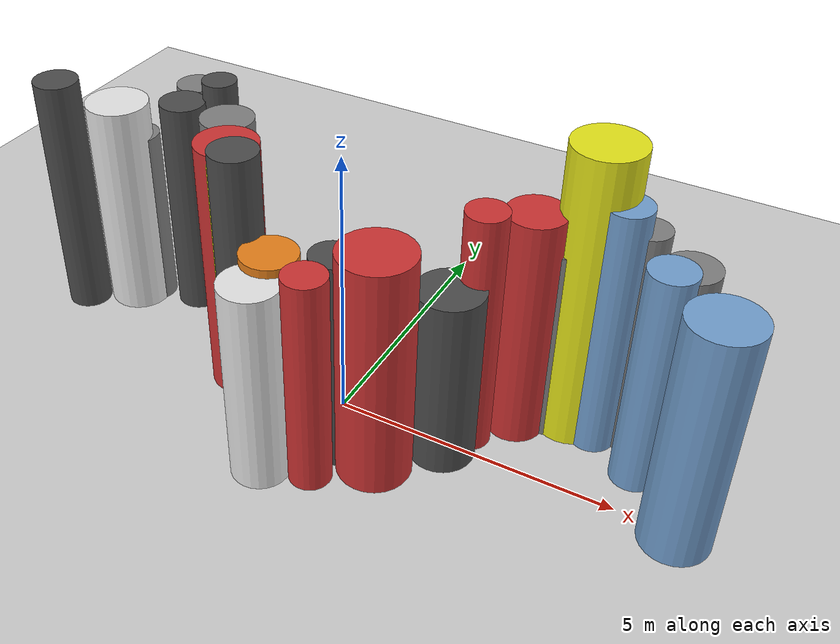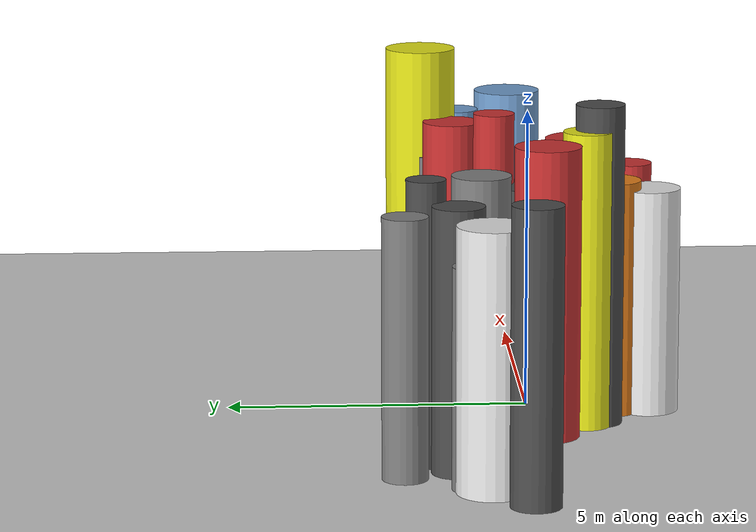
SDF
<?xml version='1.0'?>
<sdf version='1.6'>
  <world name='routeA_rl_v1__dense_recovery__rl_test__s_turn_multi_obstacle__000024'>
    <!-- Sun light -->
    <light name='sun' type='directional'>
      <cast_shadows>1</cast_shadows>
      <pose>0 0 10 0 0 0</pose>
      <diffuse>0.8 0.8 0.8 1</diffuse>
      <specular>0.2 0.2 0.2 1</specular>
      <attenuation>
        <range>1000</range>
        <constant>0.9</constant>
        <linear>0.01</linear>
        <quadratic>0.001</quadratic>
      </attenuation>
      <direction>-0.5 0.1 -0.9</direction>
    </light>

    <!-- Ground plane -->
    <model name='ground_plane'>
      <static>1</static>
      <link name='link'>
        <collision name='collision'>
          <geometry>
            <plane>
              <normal>0 0 1</normal>
              <size>100 100</size>
            </plane>
          </geometry>
          <surface>
            <contact>
              <collide_bitmask>65535</collide_bitmask>
              <ode/>
            </contact>
            <friction>
              <ode>
                <mu>100</mu>
                <mu2>50</mu2>
              </ode>
              <torsional><ode/></torsional>
            </friction>
            <bounce/>
          </surface>
          <max_contacts>10</max_contacts>
        </collision>
        <visual name='visual'>
          <cast_shadows>0</cast_shadows>
          <geometry>
            <plane>
              <normal>0 0 1</normal>
              <size>100 100</size>
            </plane>
          </geometry>
          <material>
            <script>
              <uri>file://media/materials/scripts/gazebo.material</uri>
              <n>Gazebo/Grey</n>
            </script>
          </material>
        </visual>
      </link>
    </model>

    <!-- Environment -->
    <magnetic_field>6e-06 2.3e-05 -4.2e-05</magnetic_field>
    <atmosphere type='adiabatic'/>
    <physics name='default_physics' default='0' type='ode'>
      <gravity>0 0 -9.8</gravity>
      <max_step_size>0.004</max_step_size>
      <real_time_factor>1</real_time_factor>
      <real_time_update_rate>250</real_time_update_rate>
    </physics>
    <scene>
      <ambient>0.4 0.4 0.4 1</ambient>
      <background>0.7 0.7 0.7 1</background>
      <shadows>1</shadows>
    </scene>
    <wind/>
    <spherical_coordinates>
      <surface_model>EARTH_WGS84</surface_model>
      <latitude_deg>0</latitude_deg>
      <longitude_deg>0</longitude_deg>
      <elevation>0</elevation>
      <heading_deg>0</heading_deg>
    </spherical_coordinates>

    <!-- ============ OBSTACLES (28) ============ -->
    <model name='s_turn_obs_0'>
      <static>1</static>
      <link name='link'>
        <visual name='visual'>
          <geometry>
            <cylinder>
              <radius>0.4055</radius>
              <length>4.6828</length>
            </cylinder>
          </geometry>
          <material>
            <script>
              <n>Gazebo/DarkGrey</n>
              <uri>file://media/materials/scripts/gazebo.material</uri>
            </script>
            <ambient>0.3 0.3 0.3 1</ambient>
          </material>
        </visual>
        <collision name='collision'>
          <geometry>
            <cylinder>
              <radius>0.4055</radius>
              <length>4.6828</length>
            </cylinder>
          </geometry>
          <max_contacts>10</max_contacts>
          <surface>
            <contact><ode/></contact>
            <bounce/>
            <friction>
              <ode><mu>1</mu><mu2>1</mu2></ode>
              <torsional><ode/></torsional>
            </friction>
          </surface>
        </collision>
      </link>
      <pose>-6.0000 0.3077 2.3414 0 0 0.0000</pose>
    </model>

    <model name='s_turn_obs_1'>
      <static>1</static>
      <link name='link'>
        <visual name='visual'>
          <geometry>
            <cylinder>
              <radius>0.5742</radius>
              <length>4.2001</length>
            </cylinder>
          </geometry>
          <material>
            <script>
              <n>Gazebo/White</n>
              <uri>file://media/materials/scripts/gazebo.material</uri>
            </script>
            <ambient>0.9 0.9 0.9 1</ambient>
          </material>
        </visual>
        <collision name='collision'>
          <geometry>
            <cylinder>
              <radius>0.5742</radius>
              <length>4.2001</length>
            </cylinder>
          </geometry>
          <max_contacts>10</max_contacts>
          <surface>
            <contact><ode/></contact>
            <bounce/>
            <friction>
              <ode><mu>1</mu><mu2>1</mu2></ode>
              <torsional><ode/></torsional>
            </friction>
          </surface>
        </collision>
      </link>
      <pose>-5.2000 0.9138 2.1000 0 0 0.0000</pose>
    </model>

    <model name='s_turn_obs_2'>
      <static>1</static>
      <link name='link'>
        <visual name='visual'>
          <geometry>
            <cylinder>
              <radius>0.3680</radius>
              <length>4.1854</length>
            </cylinder>
          </geometry>
          <material>
            <script>
              <n>Gazebo/Grey</n>
              <uri>file://media/materials/scripts/gazebo.material</uri>
            </script>
            <ambient>0.5 0.5 0.5 1</ambient>
          </material>
        </visual>
        <collision name='collision'>
          <geometry>
            <cylinder>
              <radius>0.3680</radius>
              <length>4.1854</length>
            </cylinder>
          </geometry>
          <max_contacts>10</max_contacts>
          <surface>
            <contact><ode/></contact>
            <bounce/>
            <friction>
              <ode><mu>1</mu><mu2>1</mu2></ode>
              <torsional><ode/></torsional>
            </friction>
          </surface>
        </collision>
      </link>
      <pose>-4.4000 2.2265 2.0927 0 0 0.0000</pose>
    </model>

    <model name='s_turn_obs_3'>
      <static>1</static>
      <link name='link'>
        <visual name='visual'>
          <geometry>
            <cylinder>
              <radius>0.3184</radius>
              <length>4.6031</length>
            </cylinder>
          </geometry>
          <material>
            <script>
              <n>Gazebo/DarkGrey</n>
              <uri>file://media/materials/scripts/gazebo.material</uri>
            </script>
            <ambient>0.3 0.3 0.3 1</ambient>
          </material>
        </visual>
        <collision name='collision'>
          <geometry>
            <cylinder>
              <radius>0.3184</radius>
              <length>4.6031</length>
            </cylinder>
          </geometry>
          <max_contacts>10</max_contacts>
          <surface>
            <contact><ode/></contact>
            <bounce/>
            <friction>
              <ode><mu>1</mu><mu2>1</mu2></ode>
              <torsional><ode/></torsional>
            </friction>
          </surface>
        </collision>
      </link>
      <pose>-3.6000 1.8654 2.3015 0 0 0.0000</pose>
    </model>

    <model name='s_turn_obs_4'>
      <static>1</static>
      <link name='link'>
        <visual name='visual'>
          <geometry>
            <cylinder>
              <radius>0.4798</radius>
              <length>4.4944</length>
            </cylinder>
          </geometry>
          <material>
            <script>
              <n>Gazebo/Grey</n>
              <uri>file://media/materials/scripts/gazebo.material</uri>
            </script>
            <ambient>0.5 0.5 0.5 1</ambient>
          </material>
        </visual>
        <collision name='collision'>
          <geometry>
            <cylinder>
              <radius>0.4798</radius>
              <length>4.4944</length>
            </cylinder>
          </geometry>
          <max_contacts>10</max_contacts>
          <surface>
            <contact><ode/></contact>
            <bounce/>
            <friction>
              <ode><mu>1</mu><mu2>1</mu2></ode>
              <torsional><ode/></torsional>
            </friction>
          </surface>
        </collision>
      </link>
      <pose>-2.8000 0.9473 2.2472 0 0 0.0000</pose>
    </model>

    <model name='s_turn_obs_5'>
      <static>1</static>
      <link name='link'>
        <visual name='visual'>
          <geometry>
            <cylinder>
              <radius>0.5446</radius>
              <length>4.7929</length>
            </cylinder>
          </geometry>
          <material>
            <script>
              <n>Gazebo/Red</n>
              <uri>file://media/materials/scripts/gazebo.material</uri>
            </script>
            <ambient>0.8 0.2 0.2 1</ambient>
          </material>
        </visual>
        <collision name='collision'>
          <geometry>
            <cylinder>
              <radius>0.5446</radius>
              <length>4.7929</length>
            </cylinder>
          </geometry>
          <max_contacts>10</max_contacts>
          <surface>
            <contact><ode/></contact>
            <bounce/>
            <friction>
              <ode><mu>1</mu><mu2>1</mu2></ode>
              <torsional><ode/></torsional>
            </friction>
          </surface>
        </collision>
      </link>
      <pose>-2.0000 -0.1821 2.3965 0 0 0.0000</pose>
    </model>

    <model name='s_turn_obs_6'>
      <static>1</static>
      <link name='link'>
        <visual name='visual'>
          <geometry>
            <cylinder>
              <radius>0.4034</radius>
              <length>5.3223</length>
            </cylinder>
          </geometry>
          <material>
            <script>
              <n>Gazebo/DarkGrey</n>
              <uri>file://media/materials/scripts/gazebo.material</uri>
            </script>
            <ambient>0.3 0.3 0.3 1</ambient>
          </material>
        </visual>
        <collision name='collision'>
          <geometry>
            <cylinder>
              <radius>0.4034</radius>
              <length>5.3223</length>
            </cylinder>
          </geometry>
          <max_contacts>10</max_contacts>
          <surface>
            <contact><ode/></contact>
            <bounce/>
            <friction>
              <ode><mu>1</mu><mu2>1</mu2></ode>
              <torsional><ode/></torsional>
            </friction>
          </surface>
        </collision>
      </link>
      <pose>-1.2000 -1.0943 2.6612 0 0 0.0000</pose>
    </model>

    <model name='s_turn_obs_7'>
      <static>1</static>
      <link name='link'>
        <visual name='visual'>
          <geometry>
            <cylinder>
              <radius>0.5094</radius>
              <length>3.7750</length>
            </cylinder>
          </geometry>
          <material>
            <script>
              <n>Gazebo/White</n>
              <uri>file://media/materials/scripts/gazebo.material</uri>
            </script>
            <ambient>0.9 0.9 0.9 1</ambient>
          </material>
        </visual>
        <collision name='collision'>
          <geometry>
            <cylinder>
              <radius>0.5094</radius>
              <length>3.7750</length>
            </cylinder>
          </geometry>
          <max_contacts>10</max_contacts>
          <surface>
            <contact><ode/></contact>
            <bounce/>
            <friction>
              <ode><mu>1</mu><mu2>1</mu2></ode>
              <torsional><ode/></torsional>
            </friction>
          </surface>
        </collision>
      </link>
      <pose>-0.4000 -2.0066 1.8875 0 0 0.0000</pose>
    </model>

    <model name='s_turn_obs_8'>
      <static>1</static>
      <link name='link'>
        <visual name='visual'>
          <geometry>
            <cylinder>
              <radius>0.3683</radius>
              <length>4.0422</length>
            </cylinder>
          </geometry>
          <material>
            <script>
              <n>Gazebo/Red</n>
              <uri>file://media/materials/scripts/gazebo.material</uri>
            </script>
            <ambient>0.8 0.2 0.2 1</ambient>
          </material>
        </visual>
        <collision name='collision'>
          <geometry>
            <cylinder>
              <radius>0.3683</radius>
              <length>4.0422</length>
            </cylinder>
          </geometry>
          <max_contacts>10</max_contacts>
          <surface>
            <contact><ode/></contact>
            <bounce/>
            <friction>
              <ode><mu>1</mu><mu2>1</mu2></ode>
              <torsional><ode/></torsional>
            </friction>
          </surface>
        </collision>
      </link>
      <pose>0.4000 -1.7470 2.0211 0 0 0.0000</pose>
    </model>

    <model name='s_turn_obs_9'>
      <static>1</static>
      <link name='link'>
        <visual name='visual'>
          <geometry>
            <cylinder>
              <radius>0.6406</radius>
              <length>4.3018</length>
            </cylinder>
          </geometry>
          <material>
            <script>
              <n>Gazebo/Red</n>
              <uri>file://media/materials/scripts/gazebo.material</uri>
            </script>
            <ambient>0.8 0.2 0.2 1</ambient>
          </material>
        </visual>
        <collision name='collision'>
          <geometry>
            <cylinder>
              <radius>0.6406</radius>
              <length>4.3018</length>
            </cylinder>
          </geometry>
          <max_contacts>10</max_contacts>
          <surface>
            <contact><ode/></contact>
            <bounce/>
            <friction>
              <ode><mu>1</mu><mu2>1</mu2></ode>
              <torsional><ode/></torsional>
            </friction>
          </surface>
        </collision>
      </link>
      <pose>1.2000 -1.0361 2.1509 0 0 0.0000</pose>
    </model>

    <model name='s_turn_obs_10'>
      <static>1</static>
      <link name='link'>
        <visual name='visual'>
          <geometry>
            <cylinder>
              <radius>0.5704</radius>
              <length>3.3410</length>
            </cylinder>
          </geometry>
          <material>
            <script>
              <n>Gazebo/DarkGrey</n>
              <uri>file://media/materials/scripts/gazebo.material</uri>
            </script>
            <ambient>0.3 0.3 0.3 1</ambient>
          </material>
        </visual>
        <collision name='collision'>
          <geometry>
            <cylinder>
              <radius>0.5704</radius>
              <length>3.3410</length>
            </cylinder>
          </geometry>
          <max_contacts>10</max_contacts>
          <surface>
            <contact><ode/></contact>
            <bounce/>
            <friction>
              <ode><mu>1</mu><mu2>1</mu2></ode>
              <torsional><ode/></torsional>
            </friction>
          </surface>
        </collision>
      </link>
      <pose>2.0000 -0.1325 1.6705 0 0 0.0000</pose>
    </model>

    <model name='s_turn_obs_11'>
      <static>1</static>
      <link name='link'>
        <visual name='visual'>
          <geometry>
            <cylinder>
              <radius>0.5012</radius>
              <length>4.3136</length>
            </cylinder>
          </geometry>
          <material>
            <script>
              <n>Gazebo/Red</n>
              <uri>file://media/materials/scripts/gazebo.material</uri>
            </script>
            <ambient>0.8 0.2 0.2 1</ambient>
          </material>
        </visual>
        <collision name='collision'>
          <geometry>
            <cylinder>
              <radius>0.5012</radius>
              <length>4.3136</length>
            </cylinder>
          </geometry>
          <max_contacts>10</max_contacts>
          <surface>
            <contact><ode/></contact>
            <bounce/>
            <friction>
              <ode><mu>1</mu><mu2>1</mu2></ode>
              <torsional><ode/></torsional>
            </friction>
          </surface>
        </collision>
      </link>
      <pose>2.8000 1.0923 2.1568 0 0 0.0000</pose>
    </model>

    <model name='s_turn_obs_12'>
      <static>1</static>
      <link name='link'>
        <visual name='visual'>
          <geometry>
            <cylinder>
              <radius>0.6025</radius>
              <length>5.4761</length>
            </cylinder>
          </geometry>
          <material>
            <script>
              <n>Gazebo/Yellow</n>
              <uri>file://media/materials/scripts/gazebo.material</uri>
            </script>
            <ambient>0.9 0.9 0.1 1</ambient>
          </material>
        </visual>
        <collision name='collision'>
          <geometry>
            <cylinder>
              <radius>0.6025</radius>
              <length>5.4761</length>
            </cylinder>
          </geometry>
          <max_contacts>10</max_contacts>
          <surface>
            <contact><ode/></contact>
            <bounce/>
            <friction>
              <ode><mu>1</mu><mu2>1</mu2></ode>
              <torsional><ode/></torsional>
            </friction>
          </surface>
        </collision>
      </link>
      <pose>3.6000 1.5984 2.7380 0 0 0.0000</pose>
    </model>

    <model name='s_turn_obs_13'>
      <static>1</static>
      <link name='link'>
        <visual name='visual'>
          <geometry>
            <cylinder>
              <radius>0.3421</radius>
              <length>4.2036</length>
            </cylinder>
          </geometry>
          <material>
            <script>
              <n>Gazebo/Grey</n>
              <uri>file://media/materials/scripts/gazebo.material</uri>
            </script>
            <ambient>0.5 0.5 0.5 1</ambient>
          </material>
        </visual>
        <collision name='collision'>
          <geometry>
            <cylinder>
              <radius>0.3421</radius>
              <length>4.2036</length>
            </cylinder>
          </geometry>
          <max_contacts>10</max_contacts>
          <surface>
            <contact><ode/></contact>
            <bounce/>
            <friction>
              <ode><mu>1</mu><mu2>1</mu2></ode>
              <torsional><ode/></torsional>
            </friction>
          </surface>
        </collision>
      </link>
      <pose>4.4000 1.6649 2.1018 0 0 0.0000</pose>
    </model>

    <model name='s_turn_obs_14'>
      <static>1</static>
      <link name='link'>
        <visual name='visual'>
          <geometry>
            <cylinder>
              <radius>0.4412</radius>
              <length>4.0290</length>
            </cylinder>
          </geometry>
          <material>
            <script>
              <n>Gazebo/Grey</n>
              <uri>file://media/materials/scripts/gazebo.material</uri>
            </script>
            <ambient>0.5 0.5 0.5 1</ambient>
          </material>
        </visual>
        <collision name='collision'>
          <geometry>
            <cylinder>
              <radius>0.4412</radius>
              <length>4.0290</length>
            </cylinder>
          </geometry>
          <max_contacts>10</max_contacts>
          <surface>
            <contact><ode/></contact>
            <bounce/>
            <friction>
              <ode><mu>1</mu><mu2>1</mu2></ode>
              <torsional><ode/></torsional>
            </friction>
          </surface>
        </collision>
      </link>
      <pose>5.2000 1.2477 2.0145 0 0 0.0000</pose>
    </model>

    <model name='s_turn_obs_15'>
      <static>1</static>
      <link name='link'>
        <visual name='visual'>
          <geometry>
            <cylinder>
              <radius>0.5888</radius>
              <length>4.2959</length>
            </cylinder>
          </geometry>
          <material>
            <script>
              <n>Gazebo/Blue</n>
              <uri>file://media/materials/scripts/gazebo.material</uri>
            </script>
            <ambient>0.447 0.624 0.812 1</ambient>
          </material>
        </visual>
        <collision name='collision'>
          <geometry>
            <cylinder>
              <radius>0.5888</radius>
              <length>4.2959</length>
            </cylinder>
          </geometry>
          <max_contacts>10</max_contacts>
          <surface>
            <contact><ode/></contact>
            <bounce/>
            <friction>
              <ode><mu>1</mu><mu2>1</mu2></ode>
              <torsional><ode/></torsional>
            </friction>
          </surface>
        </collision>
      </link>
      <pose>6.0000 -0.0893 2.1479 0 0 0.0000</pose>
    </model>

    <model name='s_turn_obs2_0'>
      <static>1</static>
      <link name='link'>
        <visual name='visual'>
          <geometry>
            <cylinder>
              <radius>0.4021</radius>
              <length>3.5259</length>
            </cylinder>
          </geometry>
          <material>
            <script>
              <n>Gazebo/Grey</n>
              <uri>file://media/materials/scripts/gazebo.material</uri>
            </script>
            <ambient>0.5 0.5 0.5 1</ambient>
          </material>
        </visual>
        <collision name='collision'>
          <geometry>
            <cylinder>
              <radius>0.4021</radius>
              <length>3.5259</length>
            </cylinder>
          </geometry>
          <max_contacts>10</max_contacts>
          <surface>
            <contact><ode/></contact>
            <bounce/>
            <friction>
              <ode><mu>1</mu><mu2>1</mu2></ode>
              <torsional><ode/></torsional>
            </friction>
          </surface>
        </collision>
      </link>
      <pose>-5.0000 1.1354 1.7629 0 0 0.0000</pose>
    </model>

    <model name='s_turn_obs2_1'>
      <static>1</static>
      <link name='link'>
        <visual name='visual'>
          <geometry>
            <cylinder>
              <radius>0.4214</radius>
              <length>4.2738</length>
            </cylinder>
          </geometry>
          <material>
            <script>
              <n>Gazebo/DarkGrey</n>
              <uri>file://media/materials/scripts/gazebo.material</uri>
            </script>
            <ambient>0.3 0.3 0.3 1</ambient>
          </material>
        </visual>
        <collision name='collision'>
          <geometry>
            <cylinder>
              <radius>0.4214</radius>
              <length>4.2738</length>
            </cylinder>
          </geometry>
          <max_contacts>10</max_contacts>
          <surface>
            <contact><ode/></contact>
            <bounce/>
            <friction>
              <ode><mu>1</mu><mu2>1</mu2></ode>
              <torsional><ode/></torsional>
            </friction>
          </surface>
        </collision>
      </link>
      <pose>-4.0909 1.3831 2.1369 0 0 0.0000</pose>
    </model>

    <model name='s_turn_obs2_2'>
      <static>1</static>
      <link name='link'>
        <visual name='visual'>
          <geometry>
            <cylinder>
              <radius>0.2148</radius>
              <length>3.4799</length>
            </cylinder>
          </geometry>
          <material>
            <script>
              <n>Gazebo/DarkGrey</n>
              <uri>file://media/materials/scripts/gazebo.material</uri>
            </script>
            <ambient>0.3 0.3 0.3 1</ambient>
          </material>
        </visual>
        <collision name='collision'>
          <geometry>
            <cylinder>
              <radius>0.2148</radius>
              <length>3.4799</length>
            </cylinder>
          </geometry>
          <max_contacts>10</max_contacts>
          <surface>
            <contact><ode/></contact>
            <bounce/>
            <friction>
              <ode><mu>1</mu><mu2>1</mu2></ode>
              <torsional><ode/></torsional>
            </friction>
          </surface>
        </collision>
      </link>
      <pose>-3.1818 0.9058 1.7399 0 0 0.0000</pose>
    </model>

    <model name='s_turn_obs2_3'>
      <static>1</static>
      <link name='link'>
        <visual name='visual'>
          <geometry>
            <cylinder>
              <radius>0.2551</radius>
              <length>3.6564</length>
            </cylinder>
          </geometry>
          <material>
            <script>
              <n>Gazebo/Yellow</n>
              <uri>file://media/materials/scripts/gazebo.material</uri>
            </script>
            <ambient>0.9 0.9 0.1 1</ambient>
          </material>
        </visual>
        <collision name='collision'>
          <geometry>
            <cylinder>
              <radius>0.2551</radius>
              <length>3.6564</length>
            </cylinder>
          </geometry>
          <max_contacts>10</max_contacts>
          <surface>
            <contact><ode/></contact>
            <bounce/>
            <friction>
              <ode><mu>1</mu><mu2>1</mu2></ode>
              <torsional><ode/></torsional>
            </friction>
          </surface>
        </collision>
      </link>
      <pose>-2.2727 -0.0182 1.8282 0 0 0.0000</pose>
    </model>

    <model name='s_turn_obs2_4'>
      <static>1</static>
      <link name='link'>
        <visual name='visual'>
          <geometry>
            <cylinder>
              <radius>0.4147</radius>
              <length>4.9103</length>
            </cylinder>
          </geometry>
          <material>
            <script>
              <n>Gazebo/Yellow</n>
              <uri>file://media/materials/scripts/gazebo.material</uri>
            </script>
            <ambient>0.9 0.9 0.1 1</ambient>
          </material>
        </visual>
        <collision name='collision'>
          <geometry>
            <cylinder>
              <radius>0.4147</radius>
              <length>4.9103</length>
            </cylinder>
          </geometry>
          <max_contacts>10</max_contacts>
          <surface>
            <contact><ode/></contact>
            <bounce/>
            <friction>
              <ode><mu>1</mu><mu2>1</mu2></ode>
              <torsional><ode/></torsional>
            </friction>
          </surface>
        </collision>
      </link>
      <pose>-1.3636 -0.8899 2.4552 0 0 0.0000</pose>
    </model>

    <model name='s_turn_obs2_5'>
      <static>1</static>
      <link name='link'>
        <visual name='visual'>
          <geometry>
            <cylinder>
              <radius>0.4746</radius>
              <length>3.9224</length>
            </cylinder>
          </geometry>
          <material>
            <script>
              <n>Gazebo/Orange</n>
              <uri>file://media/materials/scripts/gazebo.material</uri>
            </script>
            <ambient>0.9 0.5 0.1 1</ambient>
          </material>
        </visual>
        <collision name='collision'>
          <geometry>
            <cylinder>
              <radius>0.4746</radius>
              <length>3.9224</length>
            </cylinder>
          </geometry>
          <max_contacts>10</max_contacts>
          <surface>
            <contact><ode/></contact>
            <bounce/>
            <friction>
              <ode><mu>1</mu><mu2>1</mu2></ode>
              <torsional><ode/></torsional>
            </friction>
          </surface>
        </collision>
      </link>
      <pose>-0.4545 -1.3803 1.9612 0 0 0.0000</pose>
    </model>

    <model name='s_turn_obs2_6'>
      <static>1</static>
      <link name='link'>
        <visual name='visual'>
          <geometry>
            <cylinder>
              <radius>0.3837</radius>
              <length>3.9929</length>
            </cylinder>
          </geometry>
          <material>
            <script>
              <n>Gazebo/DarkGrey</n>
              <uri>file://media/materials/scripts/gazebo.material</uri>
            </script>
            <ambient>0.3 0.3 0.3 1</ambient>
          </material>
        </visual>
        <collision name='collision'>
          <geometry>
            <cylinder>
              <radius>0.3837</radius>
              <length>3.9929</length>
            </cylinder>
          </geometry>
          <max_contacts>10</max_contacts>
          <surface>
            <contact><ode/></contact>
            <bounce/>
            <friction>
              <ode><mu>1</mu><mu2>1</mu2></ode>
              <torsional><ode/></torsional>
            </friction>
          </surface>
        </collision>
      </link>
      <pose>0.4545 -1.0426 1.9965 0 0 0.0000</pose>
    </model>

    <model name='s_turn_obs2_7'>
      <static>1</static>
      <link name='link'>
        <visual name='visual'>
          <geometry>
            <cylinder>
              <radius>0.2756</radius>
              <length>3.0771</length>
            </cylinder>
          </geometry>
          <material>
            <script>
              <n>Gazebo/White</n>
              <uri>file://media/materials/scripts/gazebo.material</uri>
            </script>
            <ambient>0.9 0.9 0.9 1</ambient>
          </material>
        </visual>
        <collision name='collision'>
          <geometry>
            <cylinder>
              <radius>0.2756</radius>
              <length>3.0771</length>
            </cylinder>
          </geometry>
          <max_contacts>10</max_contacts>
          <surface>
            <contact><ode/></contact>
            <bounce/>
            <friction>
              <ode><mu>1</mu><mu2>1</mu2></ode>
              <torsional><ode/></torsional>
            </friction>
          </surface>
        </collision>
      </link>
      <pose>1.3636 -0.0255 1.5385 0 0 0.0000</pose>
    </model>

    <model name='s_turn_obs2_8'>
      <static>1</static>
      <link name='link'>
        <visual name='visual'>
          <geometry>
            <cylinder>
              <radius>0.3543</radius>
              <length>4.5500</length>
            </cylinder>
          </geometry>
          <material>
            <script>
              <n>Gazebo/Red</n>
              <uri>file://media/materials/scripts/gazebo.material</uri>
            </script>
            <ambient>0.8 0.2 0.2 1</ambient>
          </material>
        </visual>
        <collision name='collision'>
          <geometry>
            <cylinder>
              <radius>0.3543</radius>
              <length>4.5500</length>
            </cylinder>
          </geometry>
          <max_contacts>10</max_contacts>
          <surface>
            <contact><ode/></contact>
            <bounce/>
            <friction>
              <ode><mu>1</mu><mu2>1</mu2></ode>
              <torsional><ode/></torsional>
            </friction>
          </surface>
        </collision>
      </link>
      <pose>2.2727 0.3981 2.2750 0 0 0.0000</pose>
    </model>

    <model name='s_turn_obs2_9'>
      <static>1</static>
      <link name='link'>
        <visual name='visual'>
          <geometry>
            <cylinder>
              <radius>0.3455</radius>
              <length>3.6467</length>
            </cylinder>
          </geometry>
          <material>
            <script>
              <n>Gazebo/Grey</n>
              <uri>file://media/materials/scripts/gazebo.material</uri>
            </script>
            <ambient>0.5 0.5 0.5 1</ambient>
          </material>
        </visual>
        <collision name='collision'>
          <geometry>
            <cylinder>
              <radius>0.3455</radius>
              <length>3.6467</length>
            </cylinder>
          </geometry>
          <max_contacts>10</max_contacts>
          <surface>
            <contact><ode/></contact>
            <bounce/>
            <friction>
              <ode><mu>1</mu><mu2>1</mu2></ode>
              <torsional><ode/></torsional>
            </friction>
          </surface>
        </collision>
      </link>
      <pose>3.1818 1.3444 1.8234 0 0 0.0000</pose>
    </model>

    <model name='s_turn_obs2_10'>
      <static>1</static>
      <link name='link'>
        <visual name='visual'>
          <geometry>
            <cylinder>
              <radius>0.3874</radius>
              <length>4.6621</length>
            </cylinder>
          </geometry>
          <material>
            <script>
              <n>Gazebo/Blue</n>
              <uri>file://media/materials/scripts/gazebo.material</uri>
            </script>
            <ambient>0.447 0.624 0.812 1</ambient>
          </material>
        </visual>
        <collision name='collision'>
          <geometry>
            <cylinder>
              <radius>0.3874</radius>
              <length>4.6621</length>
            </cylinder>
          </geometry>
          <max_contacts>10</max_contacts>
          <surface>
            <contact><ode/></contact>
            <bounce/>
            <friction>
              <ode><mu>1</mu><mu2>1</mu2></ode>
              <torsional><ode/></torsional>
            </friction>
          </surface>
        </collision>
      </link>
      <pose>4.0909 1.4166 2.3311 0 0 0.0000</pose>
    </model>

    <model name='s_turn_obs2_11'>
      <static>1</static>
      <link name='link'>
        <visual name='visual'>
          <geometry>
            <cylinder>
              <radius>0.3983</radius>
              <length>4.1336</length>
            </cylinder>
          </geometry>
          <material>
            <script>
              <n>Gazebo/Blue</n>
              <uri>file://media/materials/scripts/gazebo.material</uri>
            </script>
            <ambient>0.447 0.624 0.812 1</ambient>
          </material>
        </visual>
        <collision name='collision'>
          <geometry>
            <cylinder>
              <radius>0.3983</radius>
              <length>4.1336</length>
            </cylinder>
          </geometry>
          <max_contacts>10</max_contacts>
          <surface>
            <contact><ode/></contact>
            <bounce/>
            <friction>
              <ode><mu>1</mu><mu2>1</mu2></ode>
              <torsional><ode/></torsional>
            </friction>
          </surface>
        </collision>
      </link>
      <pose>5.0000 0.8958 2.0668 0 0 0.0000</pose>
    </model>

    <!-- GUI camera -->
    <gui fullscreen='0'>
      <camera name='user_camera'>
        <pose>-15 0 18 0 0.85 0.15</pose>
        <view_controller>orbit</view_controller>
        <projection_type>perspective</projection_type>
      </camera>
    </gui>
  </world>
</sdf>
